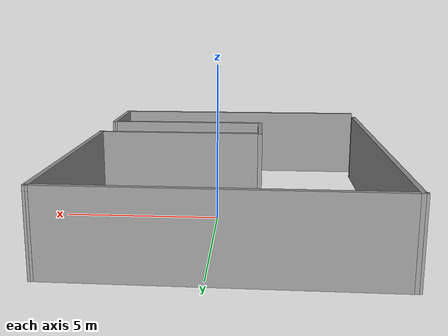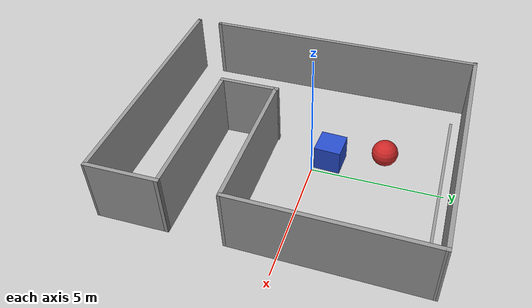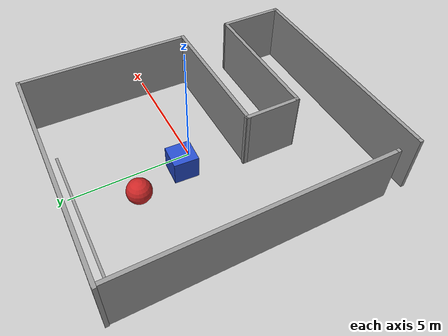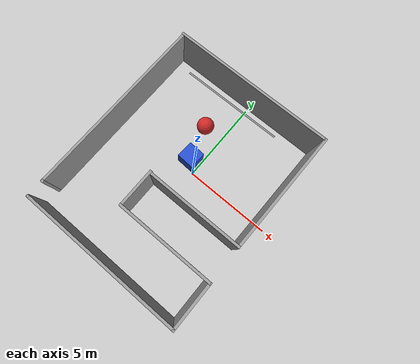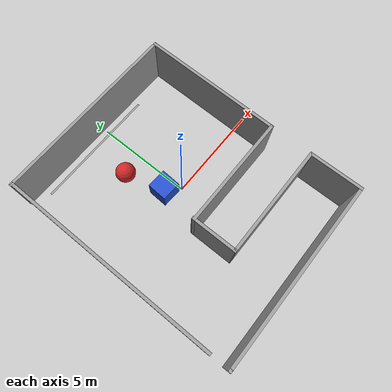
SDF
<sdf version="1.6">
 <world name="default">
  <light name="sun" type="directional">
   <pose>0 0 10 0 -0 0</pose>
   <diffuse>0.8 0.8 0.8 1</diffuse>
   <specular>0.1 0.1 0.1 1</specular>
   <attenuation>
    <range>1000</range>
    <constant>0.9</constant>
    <linear>0.01</linear>
    <quadratic>0.001</quadratic>
   </attenuation>
   <direction>-0.5 0.5 -1</direction>
  </light>
  <gravity>0 0 -9.8</gravity>
  <magnetic_field>6e-06 2.3e-05 -4.2e-05</magnetic_field>
  <atmosphere type="adiabatic"/>
  <physics name="default_physics" default="0" type="ode">
   <max_step_size>0.001</max_step_size>
   <real_time_factor>1</real_time_factor>
   <real_time_update_rate>1000</real_time_update_rate>
  </physics>
  <scene><ambient>0.4 0.4 0.4 1</ambient><background>0.7 0.7 0.7 1</background><shadows>1</shadows></scene>
  <spherical_coordinates>
   <surface_model>EARTH_WGS84</surface_model>
   <latitude_deg>0</latitude_deg>
   <longitude_deg>0</longitude_deg>
   <elevation>0</elevation>
   <heading_deg>0</heading_deg>
  </spherical_coordinates>
  <model name="yellow line_1">
   <static>1</static>
   <link name="link_ground">
    <collision name="collision">
     <geometry><plane><normal>0 0 1</normal><size>0.1 6.5</size></plane></geometry>
     <surface><friction><ode><mu>100</mu><mu2>50</mu2></ode></friction></surface>
    </collision>
    <visual name="visual_ground">
     <cast_shadows>0</cast_shadows>
     <geometry><plane><normal>0 0 1</normal><size>0.1 6.5</size></plane></geometry>
     <material>
      <script><uri>file://media/materials/scripts/gazebo.material</uri><name>Gazebo/Grey</name></script>
     </material>
    </visual>
   </link>
   <pose>-1 4.83 0 0 -0 1.57</pose>
  </model>
  <model name="rooms_2">
   <pose>-0.41132 -0.6443 0 0 -0 0</pose>
   <link name="Wall_1">
    <collision name="Wall_1_Collision">
     <geometry><box><size>0.15 0.15 2.5</size></box></geometry>
     <pose>0 0 1.25 0 -0 0</pose>
    </collision>
    <visual name="Wall_1_Visual">
     <pose>0 0 1.25 0 -0 0</pose>
     <geometry><box><size>0.15 0.15 2.5</size></box></geometry>
     <material>
      <script><uri>file://media/materials/scripts/gazebo.material</uri><name>Gazebo/Grey</name></script>
      <ambient>1 1 1 1</ambient>
     </material>
    </visual>
    <pose>4.75175 5.87683 0 0 -0 0</pose>
   </link>
   <link name="Wall_10">
    <collision name="Wall_10_Collision">
     <geometry><box><size>0.15 0.15 2.5</size></box></geometry>
     <pose>0 0 1.25 0 -0 0</pose>
    </collision>
    <visual name="Wall_10_Visual">
     <pose>0 0 1.25 0 -0 0</pose>
     <geometry><box><size>0.15 0.15 2.5</size></box></geometry>
     <material>
      <script><uri>file://media/materials/scripts/gazebo.material</uri><name>Gazebo/Grey</name></script>
      <ambient>1 1 1 1</ambient>
     </material>
    </visual>
    <pose>-4.71225 5.92282 0 0 -0 0</pose>
   </link>
   <link name="Wall_12">
    <collision name="Wall_12_Collision">
     <geometry><box><size>9.61411 0.15 2.5</size></box></geometry>
     <pose>0 0 1.25 0 -0 0</pose>
    </collision>
    <visual name="Wall_12_Visual">
     <pose>0 0 1.25 0 -0 0</pose>
     <geometry><box><size>9.61411 0.15 2.5</size></box></geometry>
     <material>
      <script><uri>file://media/materials/scripts/gazebo.material</uri><name>Gazebo/Grey</name></script>
      <ambient>1 1 1 1</ambient>
     </material>
    </visual>
    <pose>-0.020481 5.89982 0 0 0 -0.00486</pose>
   </link>
   <link name="Wall_13">
    <collision name="Wall_13_Collision">
     <geometry><box><size>0.15 0.15 2.5</size></box></geometry>
     <pose>0 0 1.25 0 -0 0</pose>
    </collision>
    <visual name="Wall_13_Visual">
     <pose>0 0 1.25 0 -0 0</pose>
     <geometry><box><size>0.15 0.15 2.5</size></box></geometry>
     <material>
      <script><uri>file://media/materials/scripts/gazebo.material</uri><name>Gazebo/Grey</name></script>
      <ambient>1 1 1 1</ambient>
     </material>
    </visual>
    <pose>4.75175 5.87683 0 0 -0 0</pose>
   </link>
   <link name="Wall_15">
    <collision name="Wall_15_Collision">
     <geometry><box><size>5.75 0.15 2.5</size></box></geometry>
     <pose>0 0 1.25 0 -0 0</pose>
    </collision>
    <visual name="Wall_15_Visual">
     <pose>0 0 1.25 0 -0 0</pose>
     <geometry><box><size>5.75 0.15 2.5</size></box></geometry>
     <material>
      <script><uri>file://media/materials/scripts/gazebo.material</uri><name>Gazebo/Grey</name></script>
      <ambient>1 1 1 1</ambient>
     </material>
    </visual>
    <pose>1.84829 -1.17727 0 0 -0 3.14159</pose>
   </link>
   <link name="Wall_16">
    <collision name="Wall_16_Collision">
     <geometry><box><size>2.33649 0.15 2.5</size></box></geometry>
     <pose>0 0 1.25 0 -0 0</pose>
    </collision>
    <visual name="Wall_16_Visual">
     <pose>0 0 1.25 0 -0 0</pose>
     <geometry><box><size>2.33649 0.15 2.5</size></box></geometry>
     <material>
      <script><uri>file://media/materials/scripts/gazebo.material</uri><name>Gazebo/Grey</name></script>
      <ambient>1 1 1 1</ambient>
     </material>
    </visual>
    <pose>-0.951466 -2.23029 0 0 0 -1.57058</pose>
   </link>
   <link name="Wall_17">
    <collision name="Wall_17_Collision">
     <geometry><box><size>5.75 0.15 2.5</size></box></geometry>
     <pose>0 0 1.25 0 -0 0</pose>
    </collision>
    <visual name="Wall_17_Visual">
     <pose>0 0 1.25 0 -0 0</pose>
     <geometry><box><size>5.75 0.15 2.5</size></box></geometry>
     <material>
      <script><uri>file://media/materials/scripts/gazebo.material</uri><name>Gazebo/Grey</name></script>
      <ambient>1 1 1 1</ambient>
     </material>
    </visual>
    <pose>1.84878 -3.32353 0 0 -0 0</pose>
   </link>
   <link name="Wall_18">
    <collision name="Wall_18_Collision">
     <geometry><box><size>2.74964 0.15 2.5</size></box></geometry>
     <pose>0 0 1.25 0 -0 0</pose>
    </collision>
    <visual name="Wall_18_Visual">
     <pose>0 0 1.25 0 -0 0</pose>
     <geometry><box><size>2.74964 0.15 2.5</size></box></geometry>
     <material>
      <script><uri>file://media/materials/scripts/gazebo.material</uri><name>Gazebo/Grey</name></script>
      <ambient>1 1 1 1</ambient>
     </material>
    </visual>
    <pose>4.64853 -4.62335 0 0 0 -1.57098</pose>
   </link>
   <link name="Wall_19">
    <collision name="Wall_19_Collision">
     <geometry><box><size>9.5 0.15 2.5</size></box></geometry>
     <pose>0 0 1.25 0 -0 0</pose>
    </collision>
    <visual name="Wall_19_Visual">
     <pose>0 0 1.25 0 -0 0</pose>
     <geometry><box><size>9.5 0.15 2.5</size></box></geometry>
     <material>
      <script><uri>file://media/materials/scripts/gazebo.material</uri><name>Gazebo/Grey</name></script>
      <ambient>1 1 1 1</ambient>
     </material>
    </visual>
    <pose>-0.026708 -5.92317 0 0 -0 3.14159</pose>
   </link>
   <link name="Wall_20">
    <collision name="Wall_20_Collision">
     <geometry><box><size>0.15 0.15 2.5</size></box></geometry>
     <pose>0 0 1.25 0 -0 0</pose>
    </collision>
    <visual name="Wall_20_Visual">
     <pose>0 0 1.25 0 -0 0</pose>
     <geometry><box><size>0.15 0.15 2.5</size></box></geometry>
     <material>
      <script><uri>file://media/materials/scripts/gazebo.material</uri><name>Gazebo/Grey</name></script>
      <ambient>1 1 1 1</ambient>
     </material>
    </visual>
    <pose>-4.70171 -5.92317 0 0 -0 0</pose>
   </link>
   <link name="Wall_22">
    <collision name="Wall_22_Collision">
     <geometry><box><size>11 0.15 2.5</size></box></geometry>
     <pose>0 0 1.25 0 -0 0</pose>
    </collision>
    <visual name="Wall_22_Visual">
     <pose>0 0 1.25 0 -0 0</pose>
     <geometry><box><size>11 0.15 2.5</size></box></geometry>
     <material>
      <script><uri>file://media/materials/scripts/gazebo.material</uri><name>Gazebo/Grey</name></script>
      <ambient>1 1 1 1</ambient>
     </material>
    </visual>
    <pose>-4.71225 0.497825 0 0 0 -1.5708</pose>
   </link>
   <link name="Wall_23">
    <collision name="Wall_23_Collision">
     <geometry><box><size>0.15 0.15 2.5</size></box></geometry>
     <pose>0 0 1.25 0 -0 0</pose>
    </collision>
    <visual name="Wall_23_Visual">
     <pose>0 0 1.25 0 -0 0</pose>
     <geometry><box><size>0.15 0.15 2.5</size></box></geometry>
     <material>
      <script><uri>file://media/materials/scripts/gazebo.material</uri><name>Gazebo/Grey</name></script>
      <ambient>1 1 1 1</ambient>
     </material>
    </visual>
    <pose>-4.71225 -4.92718 0 0 -0 0</pose>
   </link>
   <link name="Wall_3">
    <collision name="Wall_3_Collision">
     <geometry><box><size>7.16463 0.15 2.5</size></box></geometry>
     <pose>0 0 1.25 0 -0 0</pose>
    </collision>
    <visual name="Wall_3_Visual">
     <pose>0 0 1.25 0 -0 0</pose>
     <geometry><box><size>7.16463 0.15 2.5</size></box></geometry>
     <material>
      <script><uri>file://media/materials/scripts/gazebo.material</uri><name>Gazebo/Grey</name></script>
      <ambient>1 1 1 1</ambient>
     </material>
    </visual>
    <pose>4.70002 2.36989 0 0 0 -1.58554</pose>
   </link>
   <static>1</static>
  </model>
  <model name="unit_sphere">
   <pose>-1.19112 2.57008 0.5 0 -0 0</pose>
   <link name="link">
    <inertial>
     <mass>1</mass>
     <inertia><ixx>0.1</ixx><ixy>0</ixy><ixz>0</ixz><iyy>0.1</iyy><iyz>0</iyz><izz>0.1</izz></inertia>
    </inertial>
    <collision name="collision"><geometry><sphere><radius>0.5</radius></sphere></geometry></collision>
    <visual name="visual">
     <geometry><sphere><radius>0.5</radius></sphere></geometry>
     <material>
      <script><name>Gazebo/Red</name><uri>file://media/materials/scripts/gazebo.material</uri></script>
     </material>
    </visual>
   </link>
  </model>
  <model name="unit_box">
   <pose>-0.631713 0.57105 0.5 0 0 -0.051733</pose>
   <link name="link">
    <inertial>
     <mass>1</mass>
     <inertia>
      <ixx>0.166667</ixx>
      <ixy>0</ixy>
      <ixz>0</ixz>
      <iyy>0.166667</iyy>
      <iyz>0</iyz>
      <izz>0.166667</izz>
     </inertia>
    </inertial>
    <collision name="collision"><geometry><box><size>1 1 1</size></box></geometry></collision>
    <visual name="visual">
     <geometry><box><size>1 1 1</size></box></geometry>
     <material>
      <script><name>Gazebo/Blue</name><uri>file://media/materials/scripts/gazebo.material</uri></script>
     </material>
    </visual>
   </link>
  </model>
 </world>
</sdf>
